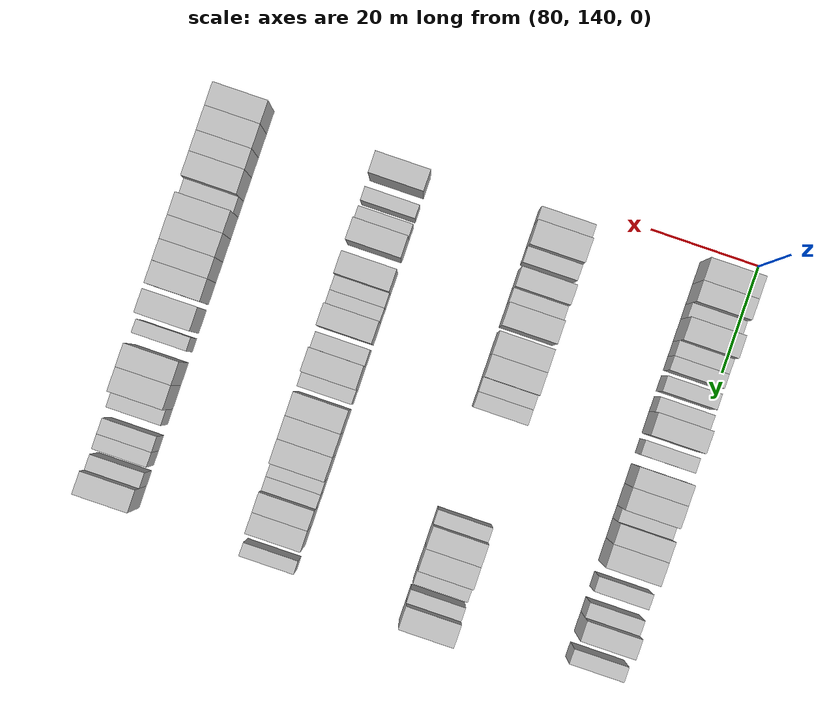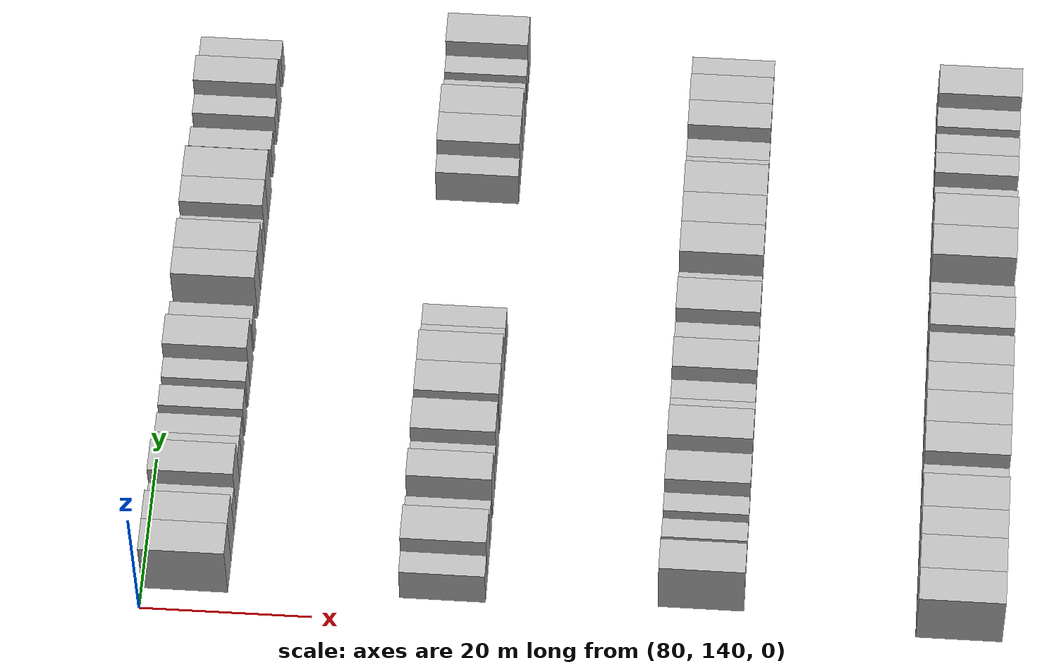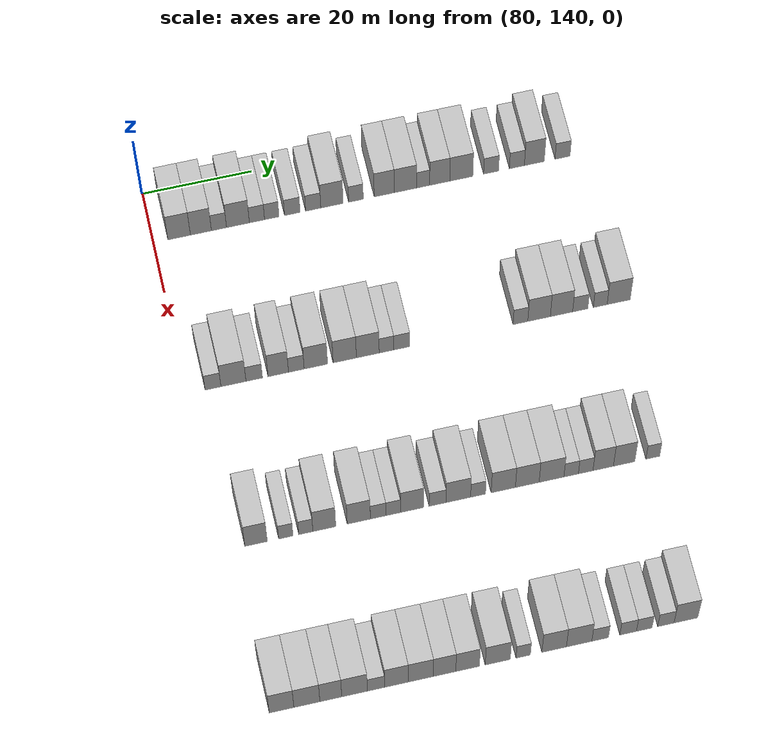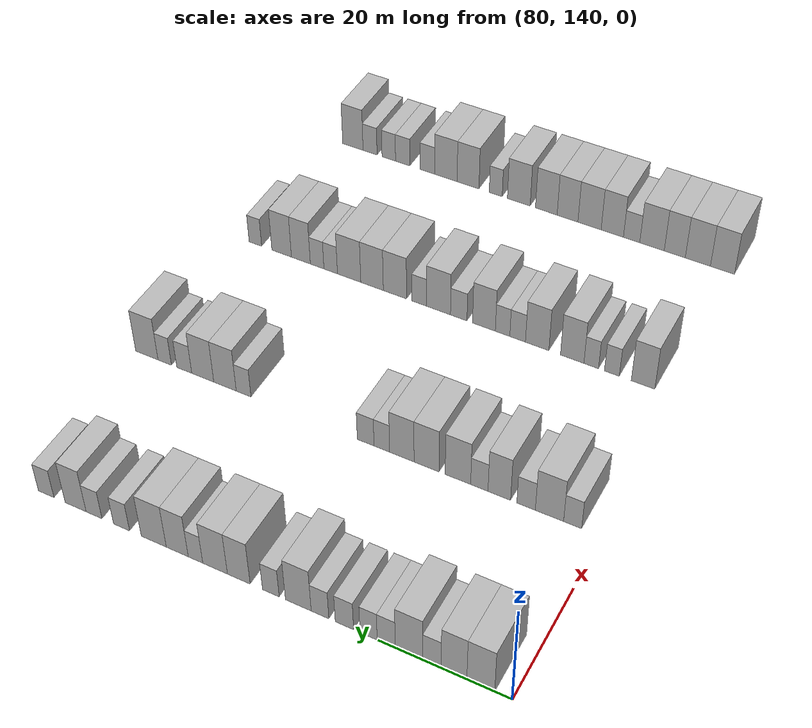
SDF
<sdf version="1.6">
 <world name="default">
  <model name="building_613">
   <static>1</static>
   <pose>85.0000 144.6874 0 0.000000 0.000000 0.000000</pose>
   <link name="link">
    <pose>0 0 4.50 0 0 0</pose>
    <collision name="collision"><geometry><box><size>10.0000 4.0903 9.0000</size></box></geometry></collision>
    <visual name="visual">
     <cast_shadows>0</cast_shadows>
     <geometry><box><size>10.0000 4.0903 9.0000</size></box></geometry>
     <material>
      <script>
       <uri>model://HANNAS_wall/materials/scripts</uri>
       <uri>model://HANNAS_wall/materials/textures</uri>
       <name>vrc/HANNAS_wall</name>
      </script>
     </material>
    </visual>
   </link>
  </model>
  <model name="building_614">
   <static>1</static>
   <pose>85.0000 148.6443 0 0.000000 0.000000 0.000000</pose>
   <link name="link">
    <pose>0 0 4.50 0 0 0</pose>
    <collision name="collision"><geometry><box><size>10.0000 3.8236 9.0000</size></box></geometry></collision>
    <visual name="visual">
     <cast_shadows>0</cast_shadows>
     <geometry><box><size>10.0000 3.8236 9.0000</size></box></geometry>
     <material>
      <script>
       <uri>model://HANNAS_wall/materials/scripts</uri>
       <uri>model://HANNAS_wall/materials/textures</uri>
       <name>vrc/HANNAS_wall</name>
      </script>
     </material>
    </visual>
   </link>
  </model>
  <model name="building_615">
   <static>1</static>
   <pose>85.0000 151.9314 0 0.000000 0.000000 0.000000</pose>
   <link name="link">
    <pose>0 0 3.00 0 0 0</pose>
    <collision name="collision"><geometry><box><size>10.0000 2.7506 6.0000</size></box></geometry></collision>
    <visual name="visual">
     <cast_shadows>0</cast_shadows>
     <geometry><box><size>10.0000 2.7506 6.0000</size></box></geometry>
     <material>
      <script>
       <uri>model://HANNAS_wall/materials/scripts</uri>
       <uri>model://HANNAS_wall/materials/textures</uri>
       <name>vrc/HANNAS_wall</name>
      </script>
     </material>
    </visual>
   </link>
  </model>
  <model name="building_616">
   <static>1</static>
   <pose>85.0000 155.3849 0 0.000000 0.000000 0.000000</pose>
   <link name="link">
    <pose>0 0 4.50 0 0 0</pose>
    <collision name="collision"><geometry><box><size>10.0000 4.1565 9.0000</size></box></geometry></collision>
    <visual name="visual">
     <cast_shadows>0</cast_shadows>
     <geometry><box><size>10.0000 4.1565 9.0000</size></box></geometry>
     <material>
      <script>
       <uri>model://HANNAS_wall/materials/scripts</uri>
       <uri>model://HANNAS_wall/materials/textures</uri>
       <name>vrc/HANNAS_wall</name>
      </script>
     </material>
    </visual>
   </link>
  </model>
  <model name="building_617">
   <static>1</static>
   <pose>85.0000 158.8484 0 0.000000 0.000000 0.000000</pose>
   <link name="link">
    <pose>0 0 3.00 0 0 0</pose>
    <collision name="collision"><geometry><box><size>10.0000 2.7704 6.0000</size></box></geometry></collision>
    <visual name="visual">
     <cast_shadows>0</cast_shadows>
     <geometry><box><size>10.0000 2.7704 6.0000</size></box></geometry>
     <material>
      <script>
       <uri>model://HANNAS_wall/materials/scripts</uri>
       <uri>model://HANNAS_wall/materials/textures</uri>
       <name>vrc/HANNAS_wall</name>
      </script>
     </material>
    </visual>
   </link>
  </model>
  <model name="building_618">
   <static>1</static>
   <pose>85.0000 161.5536 0 0.000000 0.000000 0.000000</pose>
   <link name="link">
    <pose>0 0 3.00 0 0 0</pose>
    <collision name="collision"><geometry><box><size>10.0000 2.6401 6.0000</size></box></geometry></collision>
    <visual name="visual">
     <cast_shadows>0</cast_shadows>
     <geometry><box><size>10.0000 2.6401 6.0000</size></box></geometry>
     <material>
      <script>
       <uri>model://HANNAS_wall/materials/scripts</uri>
       <uri>model://HANNAS_wall/materials/textures</uri>
       <name>vrc/HANNAS_wall</name>
      </script>
     </material>
    </visual>
   </link>
  </model>
  <model name="building_619">
   <static>1</static>
   <pose>85.0000 165.3005 0 0.000000 0.000000 0.000000</pose>
   <link name="link">
    <pose>0 0 3.00 0 0 0</pose>
    <collision name="collision"><geometry><box><size>10.0000 2.8536 6.0000</size></box></geometry></collision>
    <visual name="visual">
     <cast_shadows>0</cast_shadows>
     <geometry><box><size>10.0000 2.8536 6.0000</size></box></geometry>
     <material>
      <script>
       <uri>model://HANNAS_wall/materials/scripts</uri>
       <uri>model://HANNAS_wall/materials/textures</uri>
       <name>vrc/HANNAS_wall</name>
      </script>
     </material>
    </visual>
   </link>
  </model>
  <model name="building_620">
   <static>1</static>
   <pose>85.0000 169.1196 0 0.000000 0.000000 0.000000</pose>
   <link name="link">
    <pose>0 0 3.00 0 0 0</pose>
    <collision name="collision"><geometry><box><size>10.0000 2.7848 6.0000</size></box></geometry></collision>
    <visual name="visual">
     <cast_shadows>0</cast_shadows>
     <geometry><box><size>10.0000 2.7848 6.0000</size></box></geometry>
     <material>
      <script>
       <uri>model://HANNAS_wall/materials/scripts</uri>
       <uri>model://HANNAS_wall/materials/textures</uri>
       <name>vrc/HANNAS_wall</name>
      </script>
     </material>
    </visual>
   </link>
  </model>
  <model name="building_621">
   <static>1</static>
   <pose>85.0000 172.5570 0 0.000000 0.000000 0.000000</pose>
   <link name="link">
    <pose>0 0 4.50 0 0 0</pose>
    <collision name="collision"><geometry><box><size>10.0000 4.0900 9.0000</size></box></geometry></collision>
    <visual name="visual">
     <cast_shadows>0</cast_shadows>
     <geometry><box><size>10.0000 4.0900 9.0000</size></box></geometry>
     <material>
      <script>
       <uri>model://HANNAS_wall/materials/scripts</uri>
       <uri>model://HANNAS_wall/materials/textures</uri>
       <name>vrc/HANNAS_wall</name>
      </script>
     </material>
    </visual>
   </link>
  </model>
  <model name="building_622">
   <static>1</static>
   <pose>85.0000 176.9459 0 0.000000 0.000000 0.000000</pose>
   <link name="link">
    <pose>0 0 3.00 0 0 0</pose>
    <collision name="collision"><geometry><box><size>10.0000 2.6877 6.0000</size></box></geometry></collision>
    <visual name="visual">
     <cast_shadows>0</cast_shadows>
     <geometry><box><size>10.0000 2.6877 6.0000</size></box></geometry>
     <material>
      <script>
       <uri>model://HANNAS_wall/materials/scripts</uri>
       <uri>model://HANNAS_wall/materials/textures</uri>
       <name>vrc/HANNAS_wall</name>
      </script>
     </material>
    </visual>
   </link>
  </model>
  <model name="building_623">
   <static>1</static>
   <pose>85.0000 182.1473 0 0.000000 0.000000 0.000000</pose>
   <link name="link">
    <pose>0 0 4.50 0 0 0</pose>
    <collision name="collision"><geometry><box><size>10.0000 3.7152 9.0000</size></box></geometry></collision>
    <visual name="visual">
     <cast_shadows>0</cast_shadows>
     <geometry><box><size>10.0000 3.7152 9.0000</size></box></geometry>
     <material>
      <script>
       <uri>model://HANNAS_wall/materials/scripts</uri>
       <uri>model://HANNAS_wall/materials/textures</uri>
       <name>vrc/HANNAS_wall</name>
      </script>
     </material>
    </visual>
   </link>
  </model>
  <model name="building_624">
   <static>1</static>
   <pose>85.0000 186.0403 0 0.000000 0.000000 0.000000</pose>
   <link name="link">
    <pose>0 0 4.50 0 0 0</pose>
    <collision name="collision"><geometry><box><size>10.0000 4.0708 9.0000</size></box></geometry></collision>
    <visual name="visual">
     <cast_shadows>0</cast_shadows>
     <geometry><box><size>10.0000 4.0708 9.0000</size></box></geometry>
     <material>
      <script>
       <uri>model://HANNAS_wall/materials/scripts</uri>
       <uri>model://HANNAS_wall/materials/textures</uri>
       <name>vrc/HANNAS_wall</name>
      </script>
     </material>
    </visual>
   </link>
  </model>
  <model name="building_625">
   <static>1</static>
   <pose>85.0000 189.2838 0 0.000000 0.000000 0.000000</pose>
   <link name="link">
    <pose>0 0 3.00 0 0 0</pose>
    <collision name="collision"><geometry><box><size>10.0000 2.4161 6.0000</size></box></geometry></collision>
    <visual name="visual">
     <cast_shadows>0</cast_shadows>
     <geometry><box><size>10.0000 2.4161 6.0000</size></box></geometry>
     <material>
      <script>
       <uri>model://HANNAS_wall/materials/scripts</uri>
       <uri>model://HANNAS_wall/materials/textures</uri>
       <name>vrc/HANNAS_wall</name>
      </script>
     </material>
    </visual>
   </link>
  </model>
  <model name="building_626">
   <static>1</static>
   <pose>85.0000 192.3368 0 0.000000 0.000000 0.000000</pose>
   <link name="link">
    <pose>0 0 4.50 0 0 0</pose>
    <collision name="collision"><geometry><box><size>10.0000 3.6899 9.0000</size></box></geometry></collision>
    <visual name="visual">
     <cast_shadows>0</cast_shadows>
     <geometry><box><size>10.0000 3.6899 9.0000</size></box></geometry>
     <material>
      <script>
       <uri>model://HANNAS_wall/materials/scripts</uri>
       <uri>model://HANNAS_wall/materials/textures</uri>
       <name>vrc/HANNAS_wall</name>
      </script>
     </material>
    </visual>
   </link>
  </model>
  <model name="building_627">
   <static>1</static>
   <pose>85.0000 196.3102 0 0.000000 0.000000 0.000000</pose>
   <link name="link">
    <pose>0 0 4.50 0 0 0</pose>
    <collision name="collision"><geometry><box><size>10.0000 4.2570 9.0000</size></box></geometry></collision>
    <visual name="visual">
     <cast_shadows>0</cast_shadows>
     <geometry><box><size>10.0000 4.2570 9.0000</size></box></geometry>
     <material>
      <script>
       <uri>model://HANNAS_wall/materials/scripts</uri>
       <uri>model://HANNAS_wall/materials/textures</uri>
       <name>vrc/HANNAS_wall</name>
      </script>
     </material>
    </visual>
   </link>
  </model>
  <model name="building_628">
   <static>1</static>
   <pose>85.0000 201.8209 0 0.000000 0.000000 0.000000</pose>
   <link name="link">
    <pose>0 0 3.00 0 0 0</pose>
    <collision name="collision"><geometry><box><size>10.0000 2.7643 6.0000</size></box></geometry></collision>
    <visual name="visual">
     <cast_shadows>0</cast_shadows>
     <geometry><box><size>10.0000 2.7643 6.0000</size></box></geometry>
     <material>
      <script>
       <uri>model://HANNAS_wall/materials/scripts</uri>
       <uri>model://HANNAS_wall/materials/textures</uri>
       <name>vrc/HANNAS_wall</name>
      </script>
     </material>
    </visual>
   </link>
  </model>
  <model name="building_629">
   <static>1</static>
   <pose>85.0000 206.5917 0 0.000000 0.000000 0.000000</pose>
   <link name="link">
    <pose>0 0 3.00 0 0 0</pose>
    <collision name="collision"><geometry><box><size>10.0000 2.7772 6.0000</size></box></geometry></collision>
    <visual name="visual">
     <cast_shadows>0</cast_shadows>
     <geometry><box><size>10.0000 2.7772 6.0000</size></box></geometry>
     <material>
      <script>
       <uri>model://HANNAS_wall/materials/scripts</uri>
       <uri>model://HANNAS_wall/materials/textures</uri>
       <name>vrc/HANNAS_wall</name>
      </script>
     </material>
    </visual>
   </link>
  </model>
  <model name="building_630">
   <static>1</static>
   <pose>85.0000 209.8186 0 0.000000 0.000000 0.000000</pose>
   <link name="link">
    <pose>0 0 4.50 0 0 0</pose>
    <collision name="collision"><geometry><box><size>10.0000 3.6767 9.0000</size></box></geometry></collision>
    <visual name="visual">
     <cast_shadows>0</cast_shadows>
     <geometry><box><size>10.0000 3.6767 9.0000</size></box></geometry>
     <material>
      <script>
       <uri>model://HANNAS_wall/materials/scripts</uri>
       <uri>model://HANNAS_wall/materials/textures</uri>
       <name>vrc/HANNAS_wall</name>
      </script>
     </material>
    </visual>
   </link>
  </model>
  <model name="building_631">
   <static>1</static>
   <pose>85.0000 215.0447 0 0.000000 0.000000 0.000000</pose>
   <link name="link">
    <pose>0 0 3.00 0 0 0</pose>
    <collision name="collision"><geometry><box><size>10.0000 2.7754 6.0000</size></box></geometry></collision>
    <visual name="visual">
     <cast_shadows>0</cast_shadows>
     <geometry><box><size>10.0000 2.7754 6.0000</size></box></geometry>
     <material>
      <script>
       <uri>model://HANNAS_wall/materials/scripts</uri>
       <uri>model://HANNAS_wall/materials/textures</uri>
       <name>vrc/HANNAS_wall</name>
      </script>
     </material>
    </visual>
   </link>
  </model>
  <model name="building_846">
   <static>1</static>
   <pose>115.0000 144.6269 0 0.000000 0.000000 0.000000</pose>
   <link name="link">
    <pose>0 0 3.00 0 0 0</pose>
    <collision name="collision"><geometry><box><size>10.0000 2.8179 6.0000</size></box></geometry></collision>
    <visual name="visual">
     <cast_shadows>0</cast_shadows>
     <geometry><box><size>10.0000 2.8179 6.0000</size></box></geometry>
     <material>
      <script>
       <uri>model://HANNAS_wall/materials/scripts</uri>
       <uri>model://HANNAS_wall/materials/textures</uri>
       <name>vrc/HANNAS_wall</name>
      </script>
     </material>
    </visual>
   </link>
  </model>
  <model name="building_847">
   <static>1</static>
   <pose>115.0000 148.2677 0 0.000000 0.000000 0.000000</pose>
   <link name="link">
    <pose>0 0 4.50 0 0 0</pose>
    <collision name="collision"><geometry><box><size>10.0000 4.4636 9.0000</size></box></geometry></collision>
    <visual name="visual">
     <cast_shadows>0</cast_shadows>
     <geometry><box><size>10.0000 4.4636 9.0000</size></box></geometry>
     <material>
      <script>
       <uri>model://HANNAS_wall/materials/scripts</uri>
       <uri>model://HANNAS_wall/materials/textures</uri>
       <name>vrc/HANNAS_wall</name>
      </script>
     </material>
    </visual>
   </link>
  </model>
  <model name="building_848">
   <static>1</static>
   <pose>115.0000 151.9703 0 0.000000 0.000000 0.000000</pose>
   <link name="link">
    <pose>0 0 3.00 0 0 0</pose>
    <collision name="collision"><geometry><box><size>10.0000 2.9417 6.0000</size></box></geometry></collision>
    <visual name="visual">
     <cast_shadows>0</cast_shadows>
     <geometry><box><size>10.0000 2.9417 6.0000</size></box></geometry>
     <material>
      <script>
       <uri>model://HANNAS_wall/materials/scripts</uri>
       <uri>model://HANNAS_wall/materials/textures</uri>
       <name>vrc/HANNAS_wall</name>
      </script>
     </material>
    </visual>
   </link>
  </model>
  <model name="building_849">
   <static>1</static>
   <pose>115.0000 156.2647 0 0.000000 0.000000 0.000000</pose>
   <link name="link">
    <pose>0 0 4.50 0 0 0</pose>
    <collision name="collision"><geometry><box><size>10.0000 3.6471 9.0000</size></box></geometry></collision>
    <visual name="visual">
     <cast_shadows>0</cast_shadows>
     <geometry><box><size>10.0000 3.6471 9.0000</size></box></geometry>
     <material>
      <script>
       <uri>model://HANNAS_wall/materials/scripts</uri>
       <uri>model://HANNAS_wall/materials/textures</uri>
       <name>vrc/HANNAS_wall</name>
      </script>
     </material>
    </visual>
   </link>
  </model>
  <model name="building_850">
   <static>1</static>
   <pose>115.0000 159.4939 0 0.000000 0.000000 0.000000</pose>
   <link name="link">
    <pose>0 0 3.00 0 0 0</pose>
    <collision name="collision"><geometry><box><size>10.0000 2.8113 6.0000</size></box></geometry></collision>
    <visual name="visual">
     <cast_shadows>0</cast_shadows>
     <geometry><box><size>10.0000 2.8113 6.0000</size></box></geometry>
     <material>
      <script>
       <uri>model://HANNAS_wall/materials/scripts</uri>
       <uri>model://HANNAS_wall/materials/textures</uri>
       <name>vrc/HANNAS_wall</name>
      </script>
     </material>
    </visual>
   </link>
  </model>
  <model name="building_851">
   <static>1</static>
   <pose>115.0000 162.9912 0 0.000000 0.000000 0.000000</pose>
   <link name="link">
    <pose>0 0 4.50 0 0 0</pose>
    <collision name="collision"><geometry><box><size>10.0000 4.1833 9.0000</size></box></geometry></collision>
    <visual name="visual">
     <cast_shadows>0</cast_shadows>
     <geometry><box><size>10.0000 4.1833 9.0000</size></box></geometry>
     <material>
      <script>
       <uri>model://HANNAS_wall/materials/scripts</uri>
       <uri>model://HANNAS_wall/materials/textures</uri>
       <name>vrc/HANNAS_wall</name>
      </script>
     </material>
    </visual>
   </link>
  </model>
  <model name="building_852">
   <static>1</static>
   <pose>115.0000 168.1663 0 0.000000 0.000000 0.000000</pose>
   <link name="link">
    <pose>0 0 4.50 0 0 0</pose>
    <collision name="collision"><geometry><box><size>10.0000 4.1668 9.0000</size></box></geometry></collision>
    <visual name="visual">
     <cast_shadows>0</cast_shadows>
     <geometry><box><size>10.0000 4.1668 9.0000</size></box></geometry>
     <material>
      <script>
       <uri>model://HANNAS_wall/materials/scripts</uri>
       <uri>model://HANNAS_wall/materials/textures</uri>
       <name>vrc/HANNAS_wall</name>
      </script>
     </material>
    </visual>
   </link>
  </model>
  <model name="building_853">
   <static>1</static>
   <pose>115.0000 172.3028 0 0.000000 0.000000 0.000000</pose>
   <link name="link">
    <pose>0 0 4.50 0 0 0</pose>
    <collision name="collision"><geometry><box><size>10.0000 4.1062 9.0000</size></box></geometry></collision>
    <visual name="visual">
     <cast_shadows>0</cast_shadows>
     <geometry><box><size>10.0000 4.1062 9.0000</size></box></geometry>
     <material>
      <script>
       <uri>model://HANNAS_wall/materials/scripts</uri>
       <uri>model://HANNAS_wall/materials/textures</uri>
       <name>vrc/HANNAS_wall</name>
      </script>
     </material>
    </visual>
   </link>
  </model>
  <model name="building_854">
   <static>1</static>
   <pose>115.0000 175.6765 0 0.000000 0.000000 0.000000</pose>
   <link name="link">
    <pose>0 0 3.00 0 0 0</pose>
    <collision name="collision"><geometry><box><size>10.0000 2.6412 6.0000</size></box></geometry></collision>
    <visual name="visual">
     <cast_shadows>0</cast_shadows>
     <geometry><box><size>10.0000 2.6412 6.0000</size></box></geometry>
     <material>
      <script>
       <uri>model://HANNAS_wall/materials/scripts</uri>
       <uri>model://HANNAS_wall/materials/textures</uri>
       <name>vrc/HANNAS_wall</name>
      </script>
     </material>
    </visual>
   </link>
  </model>
  <model name="building_855">
   <static>1</static>
   <pose>115.0000 178.4247 0 0.000000 0.000000 0.000000</pose>
   <link name="link">
    <pose>0 0 3.00 0 0 0</pose>
    <collision name="collision"><geometry><box><size>10.0000 2.8552 6.0000</size></box></geometry></collision>
    <visual name="visual">
     <cast_shadows>0</cast_shadows>
     <geometry><box><size>10.0000 2.8552 6.0000</size></box></geometry>
     <material>
      <script>
       <uri>model://HANNAS_wall/materials/scripts</uri>
       <uri>model://HANNAS_wall/materials/textures</uri>
       <name>vrc/HANNAS_wall</name>
      </script>
     </material>
    </visual>
   </link>
  </model>
  <model name="building_856">
   <static>1</static>
   <pose>115.0000 199.8482 0 0.000000 0.000000 0.000000</pose>
   <link name="link">
    <pose>0 0 3.00 0 0 0</pose>
    <collision name="collision"><geometry><box><size>10.0000 2.6639 6.0000</size></box></geometry></collision>
    <visual name="visual">
     <cast_shadows>0</cast_shadows>
     <geometry><box><size>10.0000 2.6639 6.0000</size></box></geometry>
     <material>
      <script>
       <uri>model://HANNAS_wall/materials/scripts</uri>
       <uri>model://HANNAS_wall/materials/textures</uri>
       <name>vrc/HANNAS_wall</name>
      </script>
     </material>
    </visual>
   </link>
  </model>
  <model name="building_857">
   <static>1</static>
   <pose>115.0000 203.2239 0 0.000000 0.000000 0.000000</pose>
   <link name="link">
    <pose>0 0 4.50 0 0 0</pose>
    <collision name="collision"><geometry><box><size>10.0000 4.0874 9.0000</size></box></geometry></collision>
    <visual name="visual">
     <cast_shadows>0</cast_shadows>
     <geometry><box><size>10.0000 4.0874 9.0000</size></box></geometry>
     <material>
      <script>
       <uri>model://HANNAS_wall/materials/scripts</uri>
       <uri>model://HANNAS_wall/materials/textures</uri>
       <name>vrc/HANNAS_wall</name>
      </script>
     </material>
    </visual>
   </link>
  </model>
  <model name="building_858">
   <static>1</static>
   <pose>115.0000 207.2905 0 0.000000 0.000000 0.000000</pose>
   <link name="link">
    <pose>0 0 4.50 0 0 0</pose>
    <collision name="collision"><geometry><box><size>10.0000 4.0458 9.0000</size></box></geometry></collision>
    <visual name="visual">
     <cast_shadows>0</cast_shadows>
     <geometry><box><size>10.0000 4.0458 9.0000</size></box></geometry>
     <material>
      <script>
       <uri>model://HANNAS_wall/materials/scripts</uri>
       <uri>model://HANNAS_wall/materials/textures</uri>
       <name>vrc/HANNAS_wall</name>
      </script>
     </material>
    </visual>
   </link>
  </model>
  <model name="building_859">
   <static>1</static>
   <pose>115.0000 210.6958 0 0.000000 0.000000 0.000000</pose>
   <link name="link">
    <pose>0 0 3.00 0 0 0</pose>
    <collision name="collision"><geometry><box><size>10.0000 2.7647 6.0000</size></box></geometry></collision>
    <visual name="visual">
     <cast_shadows>0</cast_shadows>
     <geometry><box><size>10.0000 2.7647 6.0000</size></box></geometry>
     <material>
      <script>
       <uri>model://HANNAS_wall/materials/scripts</uri>
       <uri>model://HANNAS_wall/materials/textures</uri>
       <name>vrc/HANNAS_wall</name>
      </script>
     </material>
    </visual>
   </link>
  </model>
  <model name="building_860">
   <static>1</static>
   <pose>115.0000 214.3349 0 0.000000 0.000000 0.000000</pose>
   <link name="link">
    <pose>0 0 3.00 0 0 0</pose>
    <collision name="collision"><geometry><box><size>10.0000 2.5136 6.0000</size></box></geometry></collision>
    <visual name="visual">
     <cast_shadows>0</cast_shadows>
     <geometry><box><size>10.0000 2.5136 6.0000</size></box></geometry>
     <material>
      <script>
       <uri>model://HANNAS_wall/materials/scripts</uri>
       <uri>model://HANNAS_wall/materials/textures</uri>
       <name>vrc/HANNAS_wall</name>
      </script>
     </material>
    </visual>
   </link>
  </model>
  <model name="building_861">
   <static>1</static>
   <pose>115.0000 217.6920 0 0.000000 0.000000 0.000000</pose>
   <link name="link">
    <pose>0 0 4.50 0 0 0</pose>
    <collision name="collision"><geometry><box><size>10.0000 4.2005 9.0000</size></box></geometry></collision>
    <visual name="visual">
     <cast_shadows>0</cast_shadows>
     <geometry><box><size>10.0000 4.2005 9.0000</size></box></geometry>
     <material>
      <script>
       <uri>model://HANNAS_wall/materials/scripts</uri>
       <uri>model://HANNAS_wall/materials/textures</uri>
       <name>vrc/HANNAS_wall</name>
      </script>
     </material>
    </visual>
   </link>
  </model>
  <model name="building_1068">
   <static>1</static>
   <pose>145.0000 145.9107 0 0.000000 0.000000 0.000000</pose>
   <link name="link">
    <pose>0 0 4.50 0 0 0</pose>
    <collision name="collision"><geometry><box><size>10.0000 3.9206 9.0000</size></box></geometry></collision>
    <visual name="visual">
     <cast_shadows>0</cast_shadows>
     <geometry><box><size>10.0000 3.9206 9.0000</size></box></geometry>
     <material>
      <script>
       <uri>model://HANNAS_wall/materials/scripts</uri>
       <uri>model://HANNAS_wall/materials/textures</uri>
       <name>vrc/HANNAS_wall</name>
      </script>
     </material>
    </visual>
   </link>
  </model>
  <model name="building_1069">
   <static>1</static>
   <pose>145.0000 151.1250 0 0.000000 0.000000 0.000000</pose>
   <link name="link">
    <pose>0 0 3.00 0 0 0</pose>
    <collision name="collision"><geometry><box><size>10.0000 2.5079 6.0000</size></box></geometry></collision>
    <visual name="visual">
     <cast_shadows>0</cast_shadows>
     <geometry><box><size>10.0000 2.5079 6.0000</size></box></geometry>
     <material>
      <script>
       <uri>model://HANNAS_wall/materials/scripts</uri>
       <uri>model://HANNAS_wall/materials/textures</uri>
       <name>vrc/HANNAS_wall</name>
      </script>
     </material>
    </visual>
   </link>
  </model>
  <model name="building_1070">
   <static>1</static>
   <pose>145.0000 154.6188 0 0.000000 0.000000 0.000000</pose>
   <link name="link">
    <pose>0 0 3.00 0 0 0</pose>
    <collision name="collision"><geometry><box><size>10.0000 2.4797 6.0000</size></box></geometry></collision>
    <visual name="visual">
     <cast_shadows>0</cast_shadows>
     <geometry><box><size>10.0000 2.4797 6.0000</size></box></geometry>
     <material>
      <script>
       <uri>model://HANNAS_wall/materials/scripts</uri>
       <uri>model://HANNAS_wall/materials/textures</uri>
       <name>vrc/HANNAS_wall</name>
      </script>
     </material>
    </visual>
   </link>
  </model>
  <model name="building_1071">
   <static>1</static>
   <pose>145.0000 157.8674 0 0.000000 0.000000 0.000000</pose>
   <link name="link">
    <pose>0 0 4.50 0 0 0</pose>
    <collision name="collision"><geometry><box><size>10.0000 4.0175 9.0000</size></box></geometry></collision>
    <visual name="visual">
     <cast_shadows>0</cast_shadows>
     <geometry><box><size>10.0000 4.0175 9.0000</size></box></geometry>
     <material>
      <script>
       <uri>model://HANNAS_wall/materials/scripts</uri>
       <uri>model://HANNAS_wall/materials/textures</uri>
       <name>vrc/HANNAS_wall</name>
      </script>
     </material>
    </visual>
   </link>
  </model>
  <model name="building_1072">
   <static>1</static>
   <pose>145.0000 163.9149 0 0.000000 0.000000 0.000000</pose>
   <link name="link">
    <pose>0 0 4.50 0 0 0</pose>
    <collision name="collision"><geometry><box><size>10.0000 4.0776 9.0000</size></box></geometry></collision>
    <visual name="visual">
     <cast_shadows>0</cast_shadows>
     <geometry><box><size>10.0000 4.0776 9.0000</size></box></geometry>
     <material>
      <script>
       <uri>model://HANNAS_wall/materials/scripts</uri>
       <uri>model://HANNAS_wall/materials/textures</uri>
       <name>vrc/HANNAS_wall</name>
      </script>
     </material>
    </visual>
   </link>
  </model>
  <model name="building_1073">
   <static>1</static>
   <pose>145.0000 167.3201 0 0.000000 0.000000 0.000000</pose>
   <link name="link">
    <pose>0 0 3.00 0 0 0</pose>
    <collision name="collision"><geometry><box><size>10.0000 2.7327 6.0000</size></box></geometry></collision>
    <visual name="visual">
     <cast_shadows>0</cast_shadows>
     <geometry><box><size>10.0000 2.7327 6.0000</size></box></geometry>
     <material>
      <script>
       <uri>model://HANNAS_wall/materials/scripts</uri>
       <uri>model://HANNAS_wall/materials/textures</uri>
       <name>vrc/HANNAS_wall</name>
      </script>
     </material>
    </visual>
   </link>
  </model>
  <model name="building_1074">
   <static>1</static>
   <pose>145.0000 169.9658 0 0.000000 0.000000 0.000000</pose>
   <link name="link">
    <pose>0 0 3.00 0 0 0</pose>
    <collision name="collision"><geometry><box><size>10.0000 2.5587 6.0000</size></box></geometry></collision>
    <visual name="visual">
     <cast_shadows>0</cast_shadows>
     <geometry><box><size>10.0000 2.5587 6.0000</size></box></geometry>
     <material>
      <script>
       <uri>model://HANNAS_wall/materials/scripts</uri>
       <uri>model://HANNAS_wall/materials/textures</uri>
       <name>vrc/HANNAS_wall</name>
      </script>
     </material>
    </visual>
   </link>
  </model>
  <model name="building_1075">
   <static>1</static>
   <pose>145.0000 173.2710 0 0.000000 0.000000 0.000000</pose>
   <link name="link">
    <pose>0 0 4.50 0 0 0</pose>
    <collision name="collision"><geometry><box><size>10.0000 4.0517 9.0000</size></box></geometry></collision>
    <visual name="visual">
     <cast_shadows>0</cast_shadows>
     <geometry><box><size>10.0000 4.0517 9.0000</size></box></geometry>
     <material>
      <script>
       <uri>model://HANNAS_wall/materials/scripts</uri>
       <uri>model://HANNAS_wall/materials/textures</uri>
       <name>vrc/HANNAS_wall</name>
      </script>
     </material>
    </visual>
   </link>
  </model>
  <model name="building_1076">
   <static>1</static>
   <pose>145.0000 177.7788 0 0.000000 0.000000 0.000000</pose>
   <link name="link">
    <pose>0 0 3.00 0 0 0</pose>
    <collision name="collision"><geometry><box><size>10.0000 2.9641 6.0000</size></box></geometry></collision>
    <visual name="visual">
     <cast_shadows>0</cast_shadows>
     <geometry><box><size>10.0000 2.9641 6.0000</size></box></geometry>
     <material>
      <script>
       <uri>model://HANNAS_wall/materials/scripts</uri>
       <uri>model://HANNAS_wall/materials/textures</uri>
       <name>vrc/HANNAS_wall</name>
      </script>
     </material>
    </visual>
   </link>
  </model>
  <model name="building_1077">
   <static>1</static>
   <pose>145.0000 181.4396 0 0.000000 0.000000 0.000000</pose>
   <link name="link">
    <pose>0 0 4.50 0 0 0</pose>
    <collision name="collision"><geometry><box><size>10.0000 4.3575 9.0000</size></box></geometry></collision>
    <visual name="visual">
     <cast_shadows>0</cast_shadows>
     <geometry><box><size>10.0000 4.3575 9.0000</size></box></geometry>
     <material>
      <script>
       <uri>model://HANNAS_wall/materials/scripts</uri>
       <uri>model://HANNAS_wall/materials/textures</uri>
       <name>vrc/HANNAS_wall</name>
      </script>
     </material>
    </visual>
   </link>
  </model>
  <model name="building_1078">
   <static>1</static>
   <pose>145.0000 184.9364 0 0.000000 0.000000 0.000000</pose>
   <link name="link">
    <pose>0 0 3.00 0 0 0</pose>
    <collision name="collision"><geometry><box><size>10.0000 2.6361 6.0000</size></box></geometry></collision>
    <visual name="visual">
     <cast_shadows>0</cast_shadows>
     <geometry><box><size>10.0000 2.6361 6.0000</size></box></geometry>
     <material>
      <script>
       <uri>model://HANNAS_wall/materials/scripts</uri>
       <uri>model://HANNAS_wall/materials/textures</uri>
       <name>vrc/HANNAS_wall</name>
      </script>
     </material>
    </visual>
   </link>
  </model>
  <model name="building_1079">
   <static>1</static>
   <pose>145.0000 189.4012 0 0.000000 0.000000 0.000000</pose>
   <link name="link">
    <pose>0 0 4.50 0 0 0</pose>
    <collision name="collision"><geometry><box><size>10.0000 4.2935 9.0000</size></box></geometry></collision>
    <visual name="visual">
     <cast_shadows>0</cast_shadows>
     <geometry><box><size>10.0000 4.2935 9.0000</size></box></geometry>
     <material>
      <script>
       <uri>model://HANNAS_wall/materials/scripts</uri>
       <uri>model://HANNAS_wall/materials/textures</uri>
       <name>vrc/HANNAS_wall</name>
      </script>
     </material>
    </visual>
   </link>
  </model>
  <model name="building_1080">
   <static>1</static>
   <pose>145.0000 193.6520 0 0.000000 0.000000 0.000000</pose>
   <link name="link">
    <pose>0 0 4.50 0 0 0</pose>
    <collision name="collision"><geometry><box><size>10.0000 4.2080 9.0000</size></box></geometry></collision>
    <visual name="visual">
     <cast_shadows>0</cast_shadows>
     <geometry><box><size>10.0000 4.2080 9.0000</size></box></geometry>
     <material>
      <script>
       <uri>model://HANNAS_wall/materials/scripts</uri>
       <uri>model://HANNAS_wall/materials/textures</uri>
       <name>vrc/HANNAS_wall</name>
      </script>
     </material>
    </visual>
   </link>
  </model>
  <model name="building_1081">
   <static>1</static>
   <pose>145.0000 197.9570 0 0.000000 0.000000 0.000000</pose>
   <link name="link">
    <pose>0 0 4.50 0 0 0</pose>
    <collision name="collision"><geometry><box><size>10.0000 4.4021 9.0000</size></box></geometry></collision>
    <visual name="visual">
     <cast_shadows>0</cast_shadows>
     <geometry><box><size>10.0000 4.4021 9.0000</size></box></geometry>
     <material>
      <script>
       <uri>model://HANNAS_wall/materials/scripts</uri>
       <uri>model://HANNAS_wall/materials/textures</uri>
       <name>vrc/HANNAS_wall</name>
      </script>
     </material>
    </visual>
   </link>
  </model>
  <model name="building_1082">
   <static>1</static>
   <pose>145.0000 201.4454 0 0.000000 0.000000 0.000000</pose>
   <link name="link">
    <pose>0 0 3.00 0 0 0</pose>
    <collision name="collision"><geometry><box><size>10.0000 2.5747 6.0000</size></box></geometry></collision>
    <visual name="visual">
     <cast_shadows>0</cast_shadows>
     <geometry><box><size>10.0000 2.5747 6.0000</size></box></geometry>
     <material>
      <script>
       <uri>model://HANNAS_wall/materials/scripts</uri>
       <uri>model://HANNAS_wall/materials/textures</uri>
       <name>vrc/HANNAS_wall</name>
      </script>
     </material>
    </visual>
   </link>
  </model>
  <model name="building_1083">
   <static>1</static>
   <pose>145.0000 204.0324 0 0.000000 0.000000 0.000000</pose>
   <link name="link">
    <pose>0 0 3.00 0 0 0</pose>
    <collision name="collision"><geometry><box><size>10.0000 2.5993 6.0000</size></box></geometry></collision>
    <visual name="visual">
     <cast_shadows>0</cast_shadows>
     <geometry><box><size>10.0000 2.5993 6.0000</size></box></geometry>
     <material>
      <script>
       <uri>model://HANNAS_wall/materials/scripts</uri>
       <uri>model://HANNAS_wall/materials/textures</uri>
       <name>vrc/HANNAS_wall</name>
      </script>
     </material>
    </visual>
   </link>
  </model>
  <model name="building_1084">
   <static>1</static>
   <pose>145.0000 207.1525 0 0.000000 0.000000 0.000000</pose>
   <link name="link">
    <pose>0 0 4.50 0 0 0</pose>
    <collision name="collision"><geometry><box><size>10.0000 3.6407 9.0000</size></box></geometry></collision>
    <visual name="visual">
     <cast_shadows>0</cast_shadows>
     <geometry><box><size>10.0000 3.6407 9.0000</size></box></geometry>
     <material>
      <script>
       <uri>model://HANNAS_wall/materials/scripts</uri>
       <uri>model://HANNAS_wall/materials/textures</uri>
       <name>vrc/HANNAS_wall</name>
      </script>
     </material>
    </visual>
   </link>
  </model>
  <model name="building_1085">
   <static>1</static>
   <pose>145.0000 210.8749 0 0.000000 0.000000 0.000000</pose>
   <link name="link">
    <pose>0 0 4.50 0 0 0</pose>
    <collision name="collision"><geometry><box><size>10.0000 3.8042 9.0000</size></box></geometry></collision>
    <visual name="visual">
     <cast_shadows>0</cast_shadows>
     <geometry><box><size>10.0000 3.8042 9.0000</size></box></geometry>
     <material>
      <script>
       <uri>model://HANNAS_wall/materials/scripts</uri>
       <uri>model://HANNAS_wall/materials/textures</uri>
       <name>vrc/HANNAS_wall</name>
      </script>
     </material>
    </visual>
   </link>
  </model>
  <model name="building_1086">
   <static>1</static>
   <pose>145.0000 216.0039 0 0.000000 0.000000 0.000000</pose>
   <link name="link">
    <pose>0 0 3.00 0 0 0</pose>
    <collision name="collision"><geometry><box><size>10.0000 2.4536 6.0000</size></box></geometry></collision>
    <visual name="visual">
     <cast_shadows>0</cast_shadows>
     <geometry><box><size>10.0000 2.4536 6.0000</size></box></geometry>
     <material>
      <script>
       <uri>model://HANNAS_wall/materials/scripts</uri>
       <uri>model://HANNAS_wall/materials/textures</uri>
       <name>vrc/HANNAS_wall</name>
      </script>
     </material>
    </visual>
   </link>
  </model>
  <model name="building_1300">
   <static>1</static>
   <pose>175.0000 143.8972 0 0.000000 0.000000 0.000000</pose>
   <link name="link">
    <pose>0 0 4.50 0 0 0</pose>
    <collision name="collision"><geometry><box><size>10.0000 4.2185 9.0000</size></box></geometry></collision>
    <visual name="visual">
     <cast_shadows>0</cast_shadows>
     <geometry><box><size>10.0000 4.2185 9.0000</size></box></geometry>
     <material>
      <script>
       <uri>model://HANNAS_wall/materials/scripts</uri>
       <uri>model://HANNAS_wall/materials/textures</uri>
       <name>vrc/HANNAS_wall</name>
      </script>
     </material>
    </visual>
   </link>
  </model>
  <model name="building_1301">
   <static>1</static>
   <pose>175.0000 148.2304 0 0.000000 0.000000 0.000000</pose>
   <link name="link">
    <pose>0 0 4.50 0 0 0</pose>
    <collision name="collision"><geometry><box><size>10.0000 4.4480 9.0000</size></box></geometry></collision>
    <visual name="visual">
     <cast_shadows>0</cast_shadows>
     <geometry><box><size>10.0000 4.4480 9.0000</size></box></geometry>
     <material>
      <script>
       <uri>model://HANNAS_wall/materials/scripts</uri>
       <uri>model://HANNAS_wall/materials/textures</uri>
       <name>vrc/HANNAS_wall</name>
      </script>
     </material>
    </visual>
   </link>
  </model>
  <model name="building_1302">
   <static>1</static>
   <pose>175.0000 152.3290 0 0.000000 0.000000 0.000000</pose>
   <link name="link">
    <pose>0 0 4.50 0 0 0</pose>
    <collision name="collision"><geometry><box><size>10.0000 3.7492 9.0000</size></box></geometry></collision>
    <visual name="visual">
     <cast_shadows>0</cast_shadows>
     <geometry><box><size>10.0000 3.7492 9.0000</size></box></geometry>
     <material>
      <script>
       <uri>model://HANNAS_wall/materials/scripts</uri>
       <uri>model://HANNAS_wall/materials/textures</uri>
       <name>vrc/HANNAS_wall</name>
      </script>
     </material>
    </visual>
   </link>
  </model>
  <model name="building_1303">
   <static>1</static>
   <pose>175.0000 156.4114 0 0.000000 0.000000 0.000000</pose>
   <link name="link">
    <pose>0 0 4.50 0 0 0</pose>
    <collision name="collision"><geometry><box><size>10.0000 4.4156 9.0000</size></box></geometry></collision>
    <visual name="visual">
     <cast_shadows>0</cast_shadows>
     <geometry><box><size>10.0000 4.4156 9.0000</size></box></geometry>
     <material>
      <script>
       <uri>model://HANNAS_wall/materials/scripts</uri>
       <uri>model://HANNAS_wall/materials/textures</uri>
       <name>vrc/HANNAS_wall</name>
      </script>
     </material>
    </visual>
   </link>
  </model>
  <model name="building_1304">
   <static>1</static>
   <pose>175.0000 160.1012 0 0.000000 0.000000 0.000000</pose>
   <link name="link">
    <pose>0 0 3.00 0 0 0</pose>
    <collision name="collision"><geometry><box><size>10.0000 2.9639 6.0000</size></box></geometry></collision>
    <visual name="visual">
     <cast_shadows>0</cast_shadows>
     <geometry><box><size>10.0000 2.9639 6.0000</size></box></geometry>
     <material>
      <script>
       <uri>model://HANNAS_wall/materials/scripts</uri>
       <uri>model://HANNAS_wall/materials/textures</uri>
       <name>vrc/HANNAS_wall</name>
      </script>
     </material>
    </visual>
   </link>
  </model>
  <model name="building_1305">
   <static>1</static>
   <pose>175.0000 163.6289 0 0.000000 0.000000 0.000000</pose>
   <link name="link">
    <pose>0 0 4.50 0 0 0</pose>
    <collision name="collision"><geometry><box><size>10.0000 4.0916 9.0000</size></box></geometry></collision>
    <visual name="visual">
     <cast_shadows>0</cast_shadows>
     <geometry><box><size>10.0000 4.0916 9.0000</size></box></geometry>
     <material>
      <script>
       <uri>model://HANNAS_wall/materials/scripts</uri>
       <uri>model://HANNAS_wall/materials/textures</uri>
       <name>vrc/HANNAS_wall</name>
      </script>
     </material>
    </visual>
   </link>
  </model>
  <model name="building_1306">
   <static>1</static>
   <pose>175.0000 167.8220 0 0.000000 0.000000 0.000000</pose>
   <link name="link">
    <pose>0 0 4.50 0 0 0</pose>
    <collision name="collision"><geometry><box><size>10.0000 4.2945 9.0000</size></box></geometry></collision>
    <visual name="visual">
     <cast_shadows>0</cast_shadows>
     <geometry><box><size>10.0000 4.2945 9.0000</size></box></geometry>
     <material>
      <script>
       <uri>model://HANNAS_wall/materials/scripts</uri>
       <uri>model://HANNAS_wall/materials/textures</uri>
       <name>vrc/HANNAS_wall</name>
      </script>
     </material>
    </visual>
   </link>
  </model>
  <model name="building_1307">
   <static>1</static>
   <pose>175.0000 171.9116 0 0.000000 0.000000 0.000000</pose>
   <link name="link">
    <pose>0 0 4.50 0 0 0</pose>
    <collision name="collision"><geometry><box><size>10.0000 3.8847 9.0000</size></box></geometry></collision>
    <visual name="visual">
     <cast_shadows>0</cast_shadows>
     <geometry><box><size>10.0000 3.8847 9.0000</size></box></geometry>
     <material>
      <script>
       <uri>model://HANNAS_wall/materials/scripts</uri>
       <uri>model://HANNAS_wall/materials/textures</uri>
       <name>vrc/HANNAS_wall</name>
      </script>
     </material>
    </visual>
   </link>
  </model>
  <model name="building_1308">
   <static>1</static>
   <pose>175.0000 175.8946 0 0.000000 0.000000 0.000000</pose>
   <link name="link">
    <pose>0 0 4.50 0 0 0</pose>
    <collision name="collision"><geometry><box><size>10.0000 4.0812 9.0000</size></box></geometry></collision>
    <visual name="visual">
     <cast_shadows>0</cast_shadows>
     <geometry><box><size>10.0000 4.0812 9.0000</size></box></geometry>
     <material>
      <script>
       <uri>model://HANNAS_wall/materials/scripts</uri>
       <uri>model://HANNAS_wall/materials/textures</uri>
       <name>vrc/HANNAS_wall</name>
      </script>
     </material>
    </visual>
   </link>
  </model>
  <model name="building_1309">
   <static>1</static>
   <pose>175.0000 181.1031 0 0.000000 0.000000 0.000000</pose>
   <link name="link">
    <pose>0 0 4.50 0 0 0</pose>
    <collision name="collision"><geometry><box><size>10.0000 4.3357 9.0000</size></box></geometry></collision>
    <visual name="visual">
     <cast_shadows>0</cast_shadows>
     <geometry><box><size>10.0000 4.3357 9.0000</size></box></geometry>
     <material>
      <script>
       <uri>model://HANNAS_wall/materials/scripts</uri>
       <uri>model://HANNAS_wall/materials/textures</uri>
       <name>vrc/HANNAS_wall</name>
      </script>
     </material>
    </visual>
   </link>
  </model>
  <model name="building_1310">
   <static>1</static>
   <pose>175.0000 185.5155 0 0.000000 0.000000 0.000000</pose>
   <link name="link">
    <pose>0 0 3.00 0 0 0</pose>
    <collision name="collision"><geometry><box><size>10.0000 2.4893 6.0000</size></box></geometry></collision>
    <visual name="visual">
     <cast_shadows>0</cast_shadows>
     <geometry><box><size>10.0000 2.4893 6.0000</size></box></geometry>
     <material>
      <script>
       <uri>model://HANNAS_wall/materials/scripts</uri>
       <uri>model://HANNAS_wall/materials/textures</uri>
       <name>vrc/HANNAS_wall</name>
      </script>
     </material>
    </visual>
   </link>
  </model>
  <model name="building_1311">
   <static>1</static>
   <pose>175.0000 190.8910 0 0.000000 0.000000 0.000000</pose>
   <link name="link">
    <pose>0 0 4.50 0 0 0</pose>
    <collision name="collision"><geometry><box><size>10.0000 4.2618 9.0000</size></box></geometry></collision>
    <visual name="visual">
     <cast_shadows>0</cast_shadows>
     <geometry><box><size>10.0000 4.2618 9.0000</size></box></geometry>
     <material>
      <script>
       <uri>model://HANNAS_wall/materials/scripts</uri>
       <uri>model://HANNAS_wall/materials/textures</uri>
       <name>vrc/HANNAS_wall</name>
      </script>
     </material>
    </visual>
   </link>
  </model>
  <model name="building_1312">
   <static>1</static>
   <pose>175.0000 195.2322 0 0.000000 0.000000 0.000000</pose>
   <link name="link">
    <pose>0 0 4.50 0 0 0</pose>
    <collision name="collision"><geometry><box><size>10.0000 4.4206 9.0000</size></box></geometry></collision>
    <visual name="visual">
     <cast_shadows>0</cast_shadows>
     <geometry><box><size>10.0000 4.4206 9.0000</size></box></geometry>
     <material>
      <script>
       <uri>model://HANNAS_wall/materials/scripts</uri>
       <uri>model://HANNAS_wall/materials/textures</uri>
       <name>vrc/HANNAS_wall</name>
      </script>
     </material>
    </visual>
   </link>
  </model>
  <model name="building_1313">
   <static>1</static>
   <pose>175.0000 198.8890 0 0.000000 0.000000 0.000000</pose>
   <link name="link">
    <pose>0 0 3.00 0 0 0</pose>
    <collision name="collision"><geometry><box><size>10.0000 2.8929 6.0000</size></box></geometry></collision>
    <visual name="visual">
     <cast_shadows>0</cast_shadows>
     <geometry><box><size>10.0000 2.8929 6.0000</size></box></geometry>
     <material>
      <script>
       <uri>model://HANNAS_wall/materials/scripts</uri>
       <uri>model://HANNAS_wall/materials/textures</uri>
       <name>vrc/HANNAS_wall</name>
      </script>
     </material>
    </visual>
   </link>
  </model>
  <model name="building_1314">
   <static>1</static>
   <pose>175.0000 203.7815 0 0.000000 0.000000 0.000000</pose>
   <link name="link">
    <pose>0 0 3.00 0 0 0</pose>
    <collision name="collision"><geometry><box><size>10.0000 2.8921 6.0000</size></box></geometry></collision>
    <visual name="visual">
     <cast_shadows>0</cast_shadows>
     <geometry><box><size>10.0000 2.8921 6.0000</size></box></geometry>
     <material>
      <script>
       <uri>model://HANNAS_wall/materials/scripts</uri>
       <uri>model://HANNAS_wall/materials/textures</uri>
       <name>vrc/HANNAS_wall</name>
      </script>
     </material>
    </visual>
   </link>
  </model>
  <model name="building_1315">
   <static>1</static>
   <pose>175.0000 206.5905 0 0.000000 0.000000 0.000000</pose>
   <link name="link">
    <pose>0 0 3.00 0 0 0</pose>
    <collision name="collision"><geometry><box><size>10.0000 2.7260 6.0000</size></box></geometry></collision>
    <visual name="visual">
     <cast_shadows>0</cast_shadows>
     <geometry><box><size>10.0000 2.7260 6.0000</size></box></geometry>
     <material>
      <script>
       <uri>model://HANNAS_wall/materials/scripts</uri>
       <uri>model://HANNAS_wall/materials/textures</uri>
       <name>vrc/HANNAS_wall</name>
      </script>
     </material>
    </visual>
   </link>
  </model>
  <model name="building_1316">
   <static>1</static>
   <pose>175.0000 210.3791 0 0.000000 0.000000 0.000000</pose>
   <link name="link">
    <pose>0 0 3.00 0 0 0</pose>
    <collision name="collision"><geometry><box><size>10.0000 2.8511 6.0000</size></box></geometry></collision>
    <visual name="visual">
     <cast_shadows>0</cast_shadows>
     <geometry><box><size>10.0000 2.8511 6.0000</size></box></geometry>
     <material>
      <script>
       <uri>model://HANNAS_wall/materials/scripts</uri>
       <uri>model://HANNAS_wall/materials/textures</uri>
       <name>vrc/HANNAS_wall</name>
      </script>
     </material>
    </visual>
   </link>
  </model>
  <model name="building_1317">
   <static>1</static>
   <pose>175.0000 213.8803 0 0.000000 0.000000 0.000000</pose>
   <link name="link">
    <pose>0 0 4.50 0 0 0</pose>
    <collision name="collision"><geometry><box><size>10.0000 4.1513 9.0000</size></box></geometry></collision>
    <visual name="visual">
     <cast_shadows>0</cast_shadows>
     <geometry><box><size>10.0000 4.1513 9.0000</size></box></geometry>
     <material>
      <script>
       <uri>model://HANNAS_wall/materials/scripts</uri>
       <uri>model://HANNAS_wall/materials/textures</uri>
       <name>vrc/HANNAS_wall</name>
      </script>
     </material>
    </visual>
   </link>
  </model>
 </world>
</sdf>
